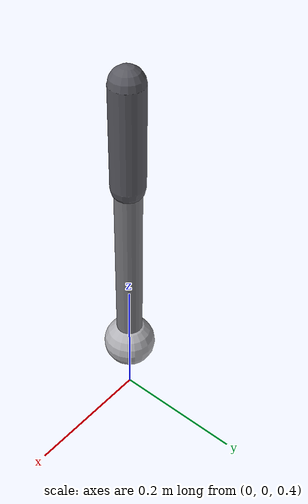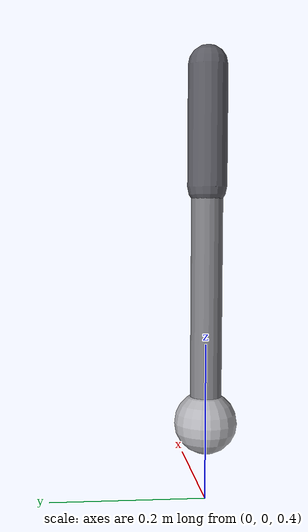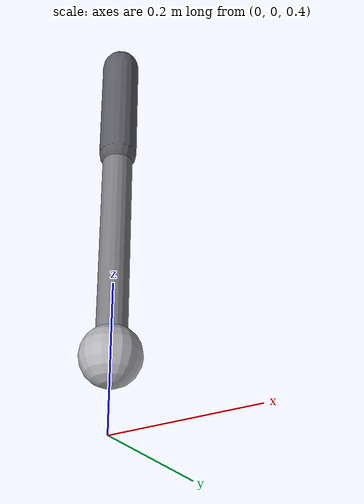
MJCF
<mujoco model="cocontraction">
  <compiler angle="radian"/>
  <option gravity="0 0 -9.81" timestep="0.001" integrator="RK4">
    <flag energy="enable"/>
  </option>

  <default>
    <geom contype="0" conaffinity="0"/>
  </default>

  <worldbody>
    <body name="upper_arm" pos="0 0 0.8">
      <geom name="upper" type="capsule" size="0.025"
            fromto="0 0 0.15  0 0 0" rgba="0.35 0.35 0.38 1"/>
      <body name="forearm" pos="0 0 0">
        <joint name="elbow" type="hinge" axis="0 1 0"
               range="-1.57 1.57" limited="true" damping="0.5"/>
        <inertial pos="0 0 -0.15" mass="1.0"
                  diaginertia="0.015 0.015 0.001"/>
        <geom name="rod" type="capsule" size="0.02"
              fromto="0 0 0  0 0 -0.3" rgba="0.48 0.48 0.50 1"/>
        <geom name="tip" type="sphere" size="0.04"
              pos="0 0 -0.3" rgba="0.7 0.7 0.72 1"/>
      </body>
    </body>
  </worldbody>

  <actuator>
    <muscle name="agonist" joint="elbow" gear="1"
            scale="50" range="0.75 1.05"
            lmin="0.5" lmax="1.6" vmax="1.0"
            fpmax="0.3" fvmax="1.4"
            timeconst="0.01 0.04"/>
    <muscle name="antagonist" joint="elbow" gear="-1"
            scale="50" range="0.75 1.05"
            lmin="0.5" lmax="1.6" vmax="1.0"
            fpmax="0.3" fvmax="1.4"
            timeconst="0.01 0.04"/>
  </actuator>

  <sensor>
    <jointpos name="jpos" joint="elbow"/>
    <jointvel name="jvel" joint="elbow"/>
    <actuatorfrc name="ago_force" actuator="agonist"/>
    <actuatorfrc name="ant_force" actuator="antagonist"/>
  </sensor>
</mujoco>
